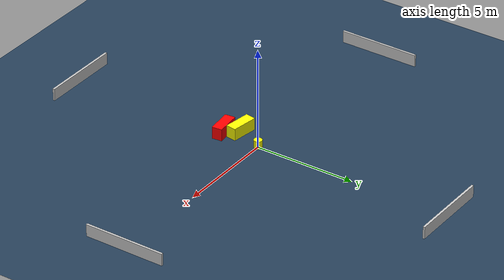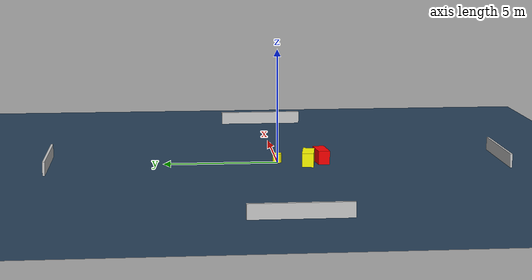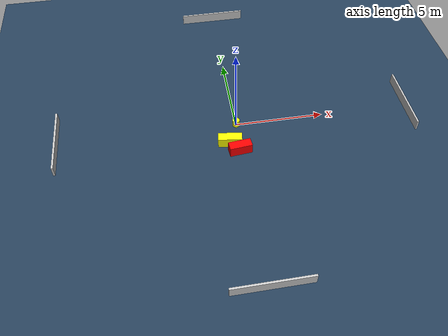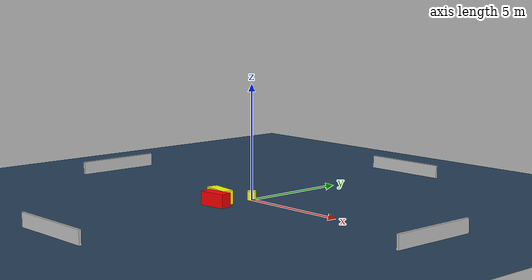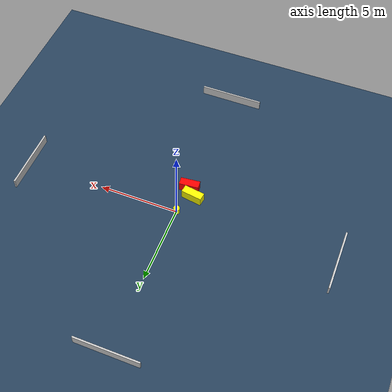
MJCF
<?xml version="1.0" ?>
<mujoco model="generated_environment">
  <option timestep="0.01" integrator="RK4" cone="elliptic"/>
  <default>
    <geom density="1"/>
  </default>
  <asset>
    <texture builtin="gradient" height="3072" name="skybox" rgb1="0.3 0.5 0.7" rgb2="0 0 0" type="skybox" width="512"/>
    <texture builtin="checker" height="300" name="groundplane" rgb1="0.2 0.3 0.4" rgb2="0.1 0.2 0.3" type="2d" width="300"/>
    <material name="groundplane" reflectance="0.2" texrepeat="5 5" texture="groundplane"/>
  </asset>
  <worldbody>
    <light dir="0 0 -1" directional="true" pos="0 0 1.5"/>
    <geom condim="3" friction="0.5 0.005 0.001" material="groundplane" name="floor" pos="0 0 0" size="0 0 0.05" type="plane"/>
    <body name="walls">
      <geom name="wall_1" condim="4" pos="-10.0 0.0 0.3" rgba="0.800000011920929 0.800000011920929 0.800000011920929 1.0" size="0.05 2.0 0.3" type="box"/>
      <geom name="wall_2" condim="4" pos="10.0 0.0 0.3" rgba="0.800000011920929 0.800000011920929 0.800000011920929 1.0" size="0.05 2.0 0.3" type="box"/>
      <geom name="wall_3" condim="4" pos="0.0 -10.0 0.3" rgba="0.800000011920929 0.800000011920929 0.800000011920929 1.0" size="2.0 0.05 0.3" type="box"/>
      <geom name="wall_4" condim="4" pos="0.0 10.0 0.3" rgba="0.800000011920929 0.800000011920929 0.800000011920929 1.0" size="2.0 0.05 0.3" type="box"/>
    </body>
    <body name="robot">
      <joint name="joint_x" type="slide" pos="0 0 0" axis="1 0 0"/>
      <joint name="joint_y" type="slide" pos="0 0 0" axis="0 1 0"/>
      <geom name="robot" type="cylinder" pos="0.0 0.0 0.2" size="0.2 0.2 0.0" mass="5.0" friction="1.0 0.005 0.0001" condim="4" rgba="1.0 1.0 0.0 1.0"/>
    </body>
    <body name="obstacle_1_movable">
      <geom name="obstacle_1_movable" condim="4" pos="-0.5447648721757227 -1.3237982391267398 0.3" euler="0 0 261.6380509402132" friction="0.0 0.005 0.001" rgba="1.0 1.0 0.0 1.0" size="0.25359980427965617 0.6561952839448257 0.3" type="box" mass="0.1"/>
      <joint type="free"/>
    </body>
    <body name="obstacle_2_static">
      <geom name="obstacle_2_static" condim="4" pos="-0.08622479007640281 -1.9478568211430947 0.3" euler="0 0 5.636641596405116" friction="0.0 0.005 0.001" rgba="1.0 0.0 0.0 1.0" size="0.6177211170104672 0.2527735609066121 0.3" type="box"/>
    </body>
  </worldbody>
  <actuator>
    <motor name="actuator_x" joint="joint_x" gear="1" ctrlrange="-1 1"/>
    <motor name="actuator_y" joint="joint_y" gear="1" ctrlrange="-1 1"/>
  </actuator>
</mujoco>
